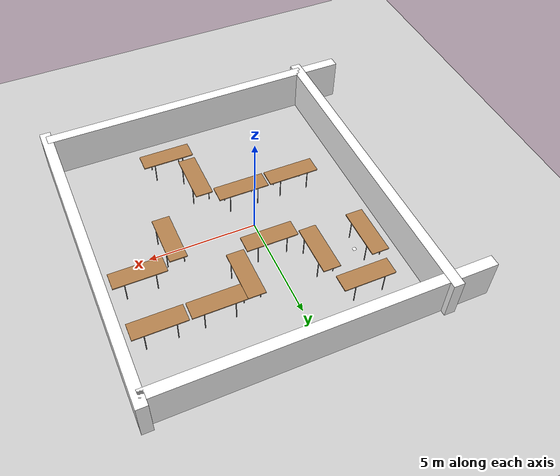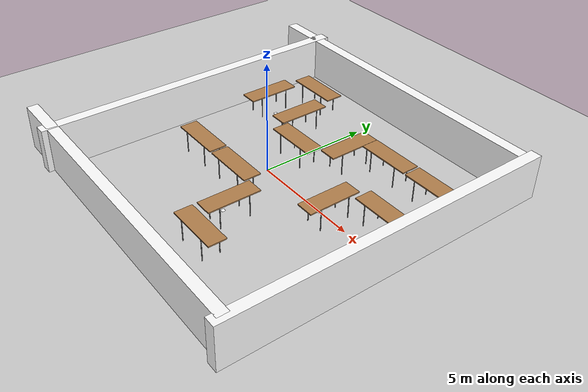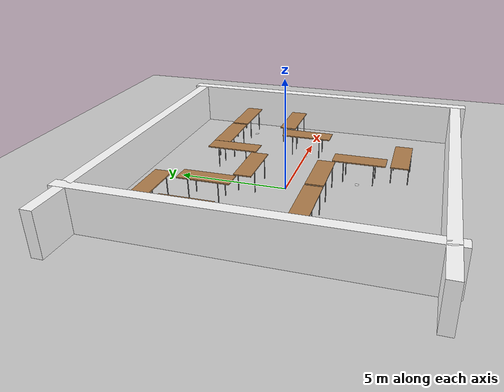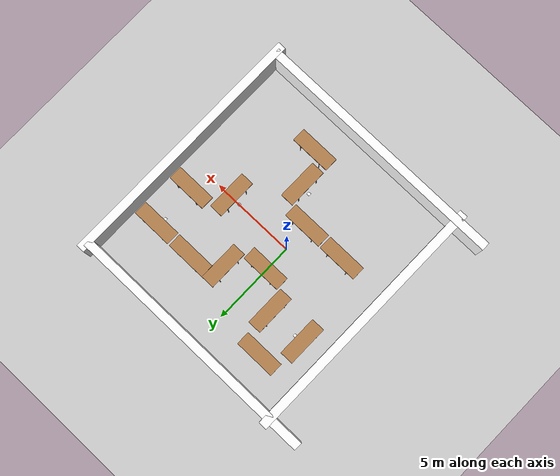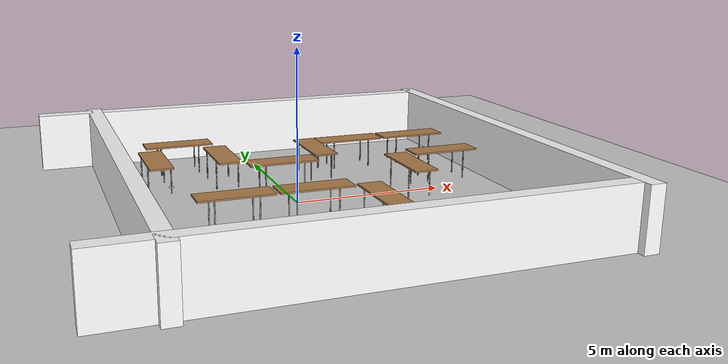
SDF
<?xml version="1.0" ?>
<sdf version="1.6">
  <world name="default">

    <!-- Lighting -->
    <include>
      <uri>https://fuel.gazebosim.org/1.0/openrobotics/models/sun</uri>
    </include>

    <!-- Ground -->
    <include>
      <uri>https://fuel.gazebosim.org/1.0/openrobotics/models/ground%20plane</uri>
    </include>

    <!-- Table -->
    <include>
      <uri>model://table</uri>
      <pose>0 -1.575 0 0 0 0</pose>
      <name>table1</name>
    </include>

    <include>
      <uri>model://table</uri>
      <pose>0 1.575 0 0 0 0</pose>
      <name>table2</name>
    </include>

    <include>
      <uri>model://table</uri>
      <pose>-1.7 3 0 0 0 1.5708</pose>
      <name>table3</name>
    </include>

    <include>
      <uri>model://table</uri>
      <pose>1.7 3 0 0 0 -1.5708</pose>
      <name>table4</name>
    </include>

    <include>
      <uri>model://table</uri>
      <pose>-2.5 -1.5750 0 0 0 0</pose>
      <name>table5</name>
    </include>

    <include>
      <uri>model://table</uri>
      <pose>1.7 -3 0 0 0 1.5708</pose>
      <name>table6</name>
    </include>

    <include>
      <uri>model://table</uri>
      <pose>4 0 0 0 0 1.5708</pose>
      <name>table7</name>
    </include>

    <include>
      <uri>model://table</uri>
      <pose>-4 3 0 0 0 -1.5708</pose>
      <name>table8</name>
    </include>

    <include>
      <uri>model://table</uri>
      <pose>-2.85 5 0 0 0 0</pose>
      <name>table9</name>
    </include>

    <include>
      <uri>model://table</uri>
      <pose>3.3 3.8 0 0 0 0</pose>
      <name>table10</name>
    </include>

    <include>
      <uri>model://table</uri>
      <pose>5.8 3.8 0 0 0 0</pose>
      <name>table11</name>
    </include>

    <include>
      <uri>model://table</uri>
      <pose>5.8 1.2 0 0 0 0</pose>
      <name>table12</name>
    </include>

    <include>
      <uri>model://table</uri>
      <pose>2.5 -4.8 0 0 0 0</pose>
      <name>table13</name>
    </include>

    <include>
      <uri>model://aruco_marker_21</uri>
      <name>aruco_marker_21</name>
      <pose>5.8 3.3 0.02 0 0 0</pose>
    </include>

    <include>
      <uri>model://aruco_marker_22</uri>
      <name>aruco_marker_22</name>
      <pose>-3.5 3 0.02 0 0 0</pose>
    </include>

    <include>
      <uri>model://aruco_marker_20</uri>
      <name>aruco_marker_20</name>
      <pose>3.5 0 0.02 0 0 0</pose>
    </include>

    <include>
      <uri>model://aruco_marker_23</uri>
      <name>aruco_marker_23</name>
      <pose>1.2 -3 0.02 0 0 0</pose>
    </include>

    <model name="wall1">
      <static>true</static>
      <pose>7.5 0 1 0 0 1.57</pose>
      <link name="link">
        <visual name="visual"> <!--fysisk størrelse-->
          <geometry>
            <box>
              <size>15 0.5 2</size>
            </box>
          </geometry>
          <material> <!--farve-->
            <ambient>1 1 1 1</ambient>
            <diffuse>1 1 1 1</diffuse>
          </material>
        </visual>
        <collision name="collision"> <!--collision-->
          <geometry>
            <box>
              <size>15 0.5 2</size>
            </box>
          </geometry>
        </collision>
      </link>
    </model>

    <model name="wall2">
      <static>true</static>
      <pose>0 7 1 0 0 0</pose>
      <link name="link">
        <visual name="visual"> <!--fysisk størrelse-->
          <geometry>
            <box>
              <size>15 0.5 2</size>
            </box>
          </geometry>
          <material> <!--farve-->
            <ambient>1 1 1 1</ambient>
            <diffuse>1 1 1 1</diffuse>
          </material>
        </visual>
        <collision name="collision"> <!--collision-->
          <geometry>
            <box>
              <size>15 0.5 2</size>
            </box>
          </geometry>
        </collision>
      </link>
    </model>

    <model name="wall3">
      <static>true</static>
      <pose>0 -7 1 0 0 0</pose>
      <link name="link">
        <visual name="visual"> <!--fysisk størrelse-->
          <geometry>
            <box>
              <size>15 0.5 2</size>
            </box>
          </geometry>
          <material> <!--farve-->
            <ambient>1 1 1 1</ambient>
            <diffuse>1 1 1 1</diffuse>
          </material>
        </visual>
        <collision name="collision"> <!--collision-->
          <geometry>
            <box>
              <size>15 0.5 2</size>
            </box>
          </geometry>
        </collision>
      </link>
    </model>

    <model name="wall4">
      <static>true</static>
      <pose>-5.5 0 1 0 0 1.57</pose>
      <link name="link">
        <visual name="visual"> <!--fysisk størrelse-->
          <geometry>
            <box>
              <size>15 0.5 2</size>
            </box>
          </geometry>
          <material> <!--farve-->
            <ambient>1 1 1 1</ambient>
            <diffuse>1 1 1 1</diffuse>
          </material>
        </visual>
        <collision name="collision"> <!--collision-->
          <geometry>
            <box>
              <size>15 0.5 2</size>
            </box>
          </geometry>
        </collision>
      </link>
    </model>

    <plugin filename="gz-sim-physics-system" name="gz::sim::systems::Physics"/>
    <plugin filename="gz-sim-user-commands-system" name="gz::sim::systems::UserCommands"/>
    <plugin filename="gz-sim-scene-broadcaster-system" name="gz::sim::systems::SceneBroadcaster"/>
    <plugin filename="gz-sim-sensors-system" name="gz::sim::systems::Sensors"/>
  </world>
</sdf>

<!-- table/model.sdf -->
<sdf version="1.5">
  <model name="Table">
    <static>true</static>
    <link name="link">
      <collision name="surface">
        <pose>0 0 1.0 0 0 0</pose>
        <geometry>
          <box>
            <size>2.39 0.8 0.05</size>
          </box>
        </geometry>
        <surface>
          <friction>
            <ode>
              <mu>0.6</mu>
              <mu2>0.6</mu2>
            </ode>
          </friction>
        </surface>
      </collision>
      <visual name="visual1">
        <pose>0 0 1.0 0 0 0</pose>
        <geometry>
          <box>
            <size>2.39 0.8 0.05</size>
          </box>
        </geometry>
        <material>
          <diffuse>1.0 1.0 1.0</diffuse>
          <script>
            <uri>file://media/materials/scripts/gazebo.material</uri>
            <name>Gazebo/Wood</name>
          </script>
          <!-- PBR for Ignition, material scripts for gazebo classic-->
          <pbr>
            <metal>
              <albedo_map>model://table/Table_Diffuse.jpg</albedo_map>
            </metal>
          </pbr>
        </material>
      </visual>
      <collision name="front_left_leg">
        <pose>0.68 0.38 0.5 0 0 0</pose>
        <geometry>
          <cylinder>
            <radius>0.02</radius>
            <length>1.0</length>
          </cylinder>
        </geometry>
      </collision>
      <visual name="front_left_leg">
        <pose>0.68 0.38 0.5 0 0 0</pose>
        <geometry>
          <cylinder>
            <radius>0.02</radius>
            <length>1.0</length>
          </cylinder>
        </geometry>
        <material>
          <diffuse>0.5 0.5 0.5</diffuse>
          <script>
            <uri>file://media/materials/scripts/gazebo.material</uri>
            <name>Gazebo/Grey</name>
          </script>
        </material>
      </visual>
      <collision name="front_right_leg">
        <pose>0.68 -0.38 0.5 0 0 0</pose>
        <geometry>
          <cylinder>
            <radius>0.02</radius>
            <length>1.0</length>
          </cylinder>
        </geometry>
      </collision>
      <visual name="front_right_leg">
        <pose>0.68 -0.38 0.5 0 0 0</pose>
        <geometry>
          <cylinder>
            <radius>0.02</radius>
            <length>1.0</length>
          </cylinder>
        </geometry>
        <material>
          <diffuse>0.5 0.5 0.5</diffuse>
          <script>
            <uri>file://media/materials/scripts/gazebo.material</uri>
            <name>Gazebo/Grey</name>
          </script>
        </material>
      </visual>
      <collision name="back_right_leg">
        <pose>-0.68 -0.38 0.5 0 0 0</pose>
        <geometry>
          <cylinder>
            <radius>0.02</radius>
            <length>1.0</length>
          </cylinder>
        </geometry>
      </collision>
      <visual name="back_right_leg">
        <pose>-0.68 -0.38 0.5 0 0 0</pose>
        <geometry>
          <cylinder>
            <radius>0.02</radius>
            <length>1.0</length>
          </cylinder>
        </geometry>
        <material>
          <diffuse>0.5 0.5 0.5</diffuse>
          <script>
            <uri>file://media/materials/scripts/gazebo.material</uri>
            <name>Gazebo/Grey</name>
          </script>
        </material>
      </visual>
      <collision name="back_left_leg">
        <pose>-0.68 0.38 0.5 0 0 0</pose>
        <geometry>
          <cylinder>
            <radius>0.02</radius>
            <length>1.0</length>
          </cylinder>
        </geometry>
      </collision>
      <visual name="back_left_leg">
        <pose>-0.68 0.38 0.5 0 0 0</pose>
        <geometry>
          <cylinder>
            <radius>0.02</radius>
            <length>1.0</length>
          </cylinder>
        </geometry>
        <material>
          <diffuse>0.5 0.5 0.5</diffuse>
          <script>
            <uri>file://media/materials/scripts/gazebo.material</uri>
            <name>Gazebo/Grey</name>
          </script>
        </material>
      </visual>
    </link>
  </model>
</sdf>

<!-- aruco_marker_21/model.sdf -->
<sdf version="1.6">
  <model name="aruco_marker_21">
    <static>true</static>

    <link name="marker_21_link">

      <visual name="marker_21_visual">
        <pose>0 0 0 0 0 0</pose>

        <geometry>
          <plane>
            <normal>0 0 1</normal>
            <size>0.162 0.162</size>
          </plane>
        </geometry>

        <material>
          <ambient>1 1 1 1</ambient>
          <diffuse>1 1 1 1</diffuse>
          <specular>0 0 0 1</specular>

          <pbr>
            <metal>
              <albedo_map>model://aruco_marker_21/textures/aruco_marker_21.png</albedo_map>
              <roughness>1.0</roughness>
              <metalness>0.0</metalness>
            </metal>
          </pbr>
        </material>

        <cast_shadows>false</cast_shadows>
      </visual>
    </link>
  </model>
</sdf>

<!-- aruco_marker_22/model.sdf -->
<sdf version="1.6">
  <model name="aruco_marker_22">
    <static>true</static>

    <link name="marker_22_link">

      <visual name="marker_22_visual">
        <pose>0 0 0 0 0 0</pose>

        <geometry>
          <plane>
            <normal>0 0 1</normal>
            <size>0.162 0.162</size>
          </plane>
        </geometry>

        <material>
          <ambient>1 1 1 1</ambient>
          <diffuse>1 1 1 1</diffuse>
          <specular>0 0 0 1</specular>

          <pbr>
            <metal>
              <albedo_map>model://aruco_marker_22/textures/aruco_marker_22.png</albedo_map>
              <roughness>1.0</roughness>
              <metalness>0.0</metalness>
            </metal>
          </pbr>
        </material>

        <cast_shadows>false</cast_shadows>
      </visual>
    </link>
  </model>
</sdf>

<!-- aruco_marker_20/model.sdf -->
<sdf version="1.6">
  <model name="aruco_marker_20">
    <static>true</static>

    <link name="marker_20_link">

      <visual name="marker_20_visual">
        <pose>0 0 0 0 0 0</pose>

        <geometry>
          <plane>
            <normal>0 0 1</normal>
            <size>0.162 0.162</size>
          </plane>
        </geometry>

        <material>
          <ambient>1 1 1 1</ambient>
          <diffuse>1 1 1 1</diffuse>
          <specular>0 0 0 1</specular>

          <pbr>
            <metal>
              <albedo_map>model://aruco_marker_20/textures/aruco_marker_20.png</albedo_map>
              <roughness>1.0</roughness>
              <metalness>0.0</metalness>
            </metal>
          </pbr>
        </material>

        <cast_shadows>false</cast_shadows>
      </visual>
    </link>
  </model>
</sdf>

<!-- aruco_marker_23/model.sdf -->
<sdf version="1.6">
  <model name="aruco_marker_23">
    <static>true</static>

    <link name="marker_23_link">

      <visual name="marker_23_visual">
        <pose>0 0 0 0 0 0</pose>

        <geometry>
          <plane>
            <normal>0 0 1</normal>
            <size>0.162 0.162</size>
          </plane>
        </geometry>

        <material>
          <ambient>1 1 1 1</ambient>
          <diffuse>1 1 1 1</diffuse>
          <specular>0 0 0 1</specular>

          <pbr>
            <metal>
              <albedo_map>model://aruco_marker_23/textures/aruco_marker_23.png</albedo_map>
              <roughness>1.0</roughness>
              <metalness>0.0</metalness>
            </metal>
          </pbr>
        </material>

        <cast_shadows>false</cast_shadows>
      </visual>
    </link>
  </model>
</sdf>
